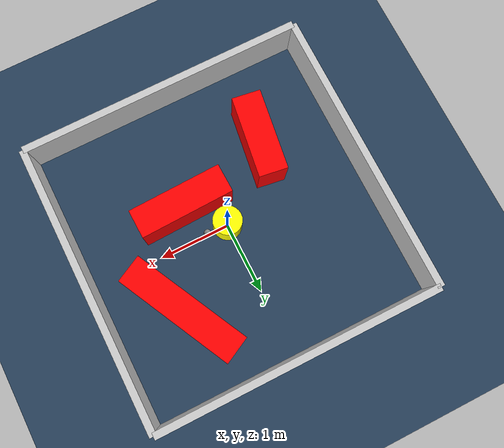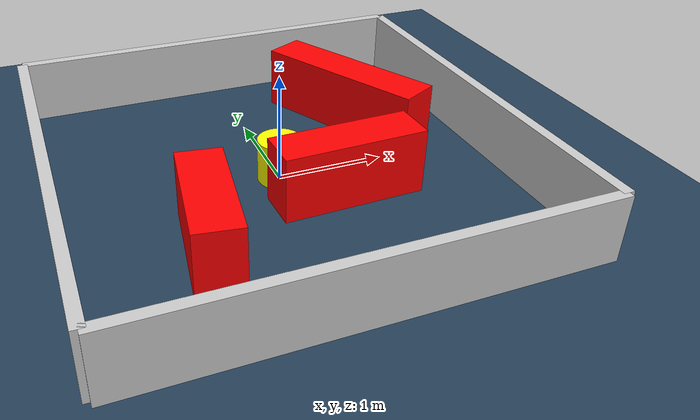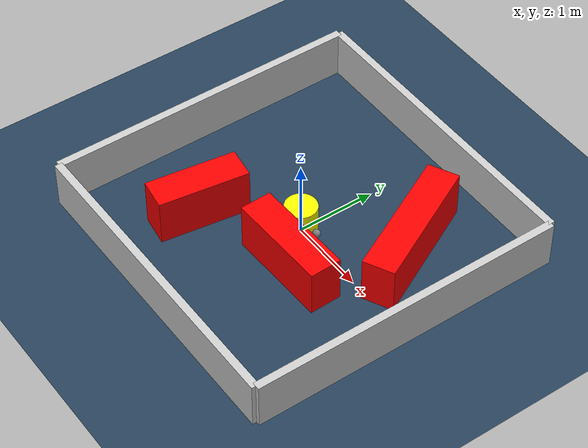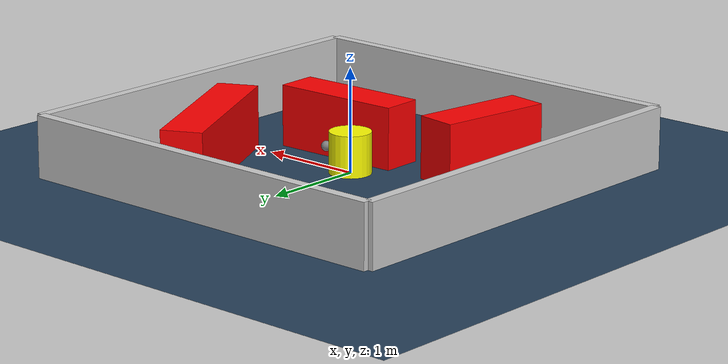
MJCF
<?xml version="1.0" ?>
<mujoco model="generated_environment">
  <option timestep="0.01" integrator="RK4" cone="elliptic"/>
  <default>
    <geom density="1"/>
  </default>
  <asset>
    <texture builtin="gradient" height="3072" rgb1="0.3 0.5 0.7" rgb2="0 0 0" type="skybox" width="512"/>
    <texture builtin="checker" height="300" mark="edge" markrgb="0.8 0.8 0.8" name="groundplane" rgb1="0.2 0.3 0.4" rgb2="0.1 0.2 0.3" type="2d" width="300"/>
    <material name="groundplane" reflectance="0.2" texrepeat="5 5" texture="groundplane" texuniform="true"/>
    <material name="robot" rgba="0.0 1.0 0.0 1"/>
  </asset>
  <worldbody>
    <light dir="0 0 -1" directional="true" pos="0 0 1.5"/>
    <geom condim="4" friction="1.0 0.005 0.001" material="groundplane" name="floor" size="0 0 0.05" type="plane"/>
    <body name="walls">
      <geom name="wall_1" condim="4" pos="-2.0 0.0 0.3" rgba="0.800000011920929 0.800000011920929 0.800000011920929 1.0" size="0.05 2.0 0.3" type="box"/>
      <geom name="wall_2" condim="4" pos="2.0 0.0 0.3" rgba="0.800000011920929 0.800000011920929 0.800000011920929 1.0" size="0.05 2.0 0.3" type="box"/>
      <geom name="wall_3" condim="4" pos="0.0 -2.0 0.3" rgba="0.800000011920929 0.800000011920929 0.800000011920929 1.0" size="2.0 0.05 0.3" type="box"/>
      <geom name="wall_4" condim="4" pos="0.0 2.0 0.3" rgba="0.800000011920929 0.800000011920929 0.800000011920929 1.0" size="2.0 0.05 0.3" type="box"/>
    </body>
    <body name="robot">
      <joint name="joint_x" type="slide" pos="0 0 0" axis="1 0 0"/>
      <joint name="joint_y" type="slide" pos="0 0 0" axis="0 1 0"/>
      <geom name="robot" type="sphere" pos="0.3 0.0 0.2" size="0.05" mass="5." friction="1.0 0.005 0.0001" condim="4" rgba="0.5 0.5 0.5 1.0"/>
      <site name="sensor_ball"/>
    </body>
    <body name="obstacle_movable_1">
      <geom name="obstacle_movable_1" condim="4" pos="0.0 0.0 0.2" euler="0 0 0.0" friction="1.0 0.005 0.001" rgba="1.0 1.0 0.0 1.0" size="0.2 0.2 0.0" type="cylinder" mass="0.1"/>
      <joint type="free"/>
    </body>
    <body name="obstacle_2_static">
      <geom name="obstacle_2_static" condim="4" pos="1.0281247773393634 0.7892337163011842 0.3" euler="0 0 116.91517092225894" friction="1.0 0.005 0.001" rgba="1 0 0 1" size="0.8545250548029173 0.2 0.3" type="box"/>
    </body>
    <body name="obstacle_3_static">
      <geom name="obstacle_3_static" condim="4" pos="0.4412670306856161 -0.46281294354407887 0.3" euler="0 0 1.7661346730729521" friction="1.0 0.005 0.001" rgba="1 0 0 1" size="0.6521855071846345 0.2 0.3" type="box"/>
    </body>
    <body name="obstacle_4_static">
      <geom name="obstacle_4_static" condim="4" pos="-0.8860077693814166 -0.8234939796662202 0.3" euler="0 0 81.72745061125103" friction="1.0 0.005 0.001" rgba="1 0 0 1" size="0.5671298819818339 0.2 0.3" type="box"/>
    </body>
  </worldbody>
  <actuator>
    <motor name="actuator_x" joint="joint_x" gear="1" ctrlrange="-1 1"/>
    <motor name="actuator_y" joint="joint_y" gear="1" ctrlrange="-1 1"/>
  </actuator>
</mujoco>
